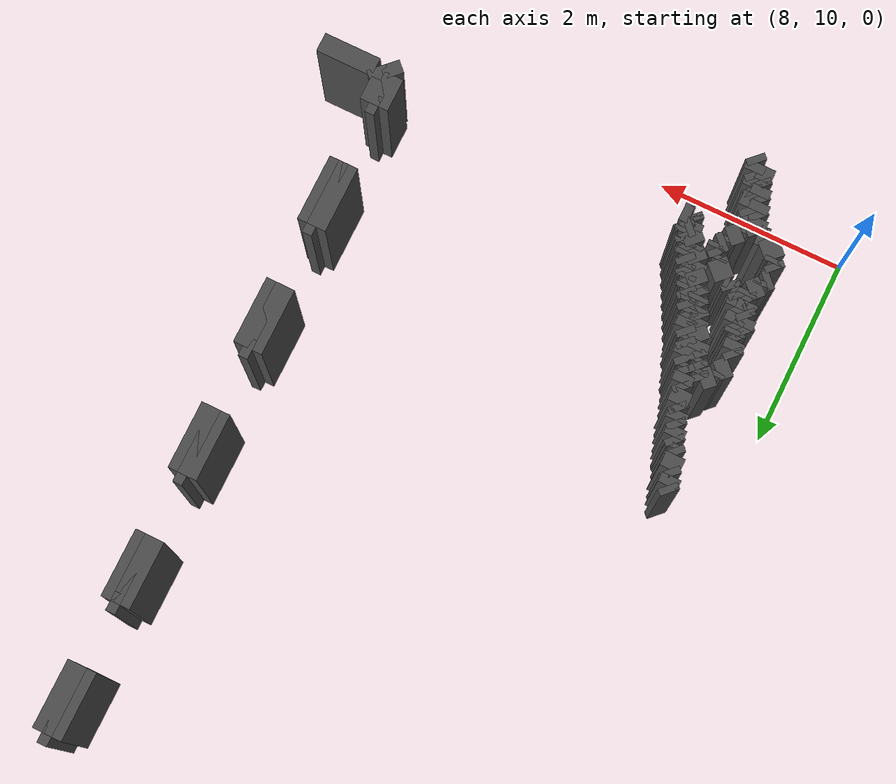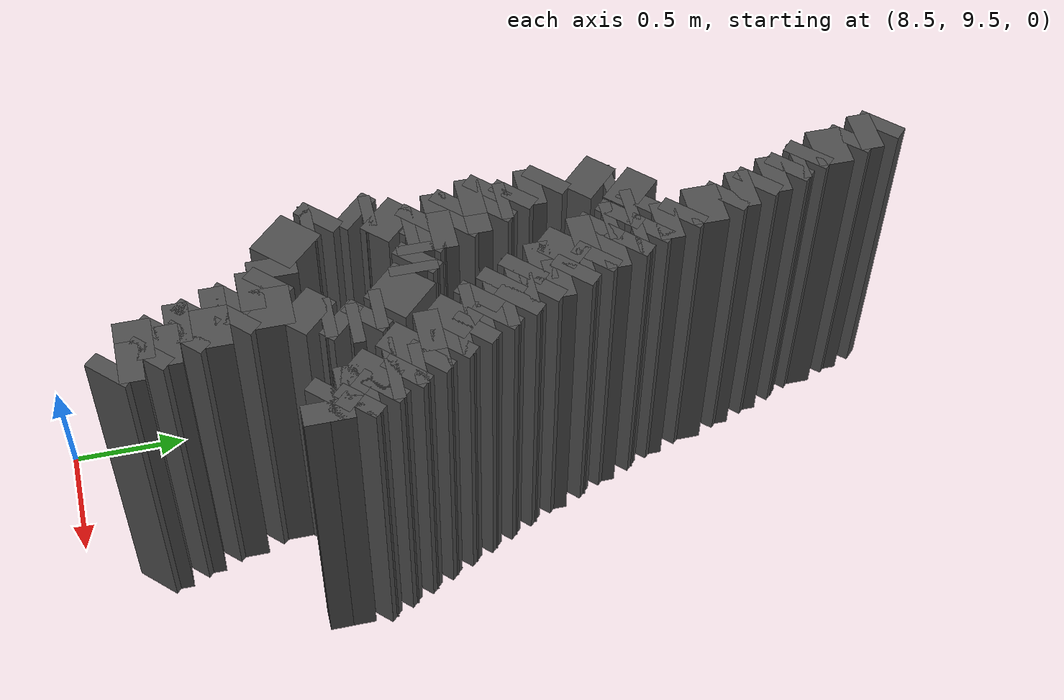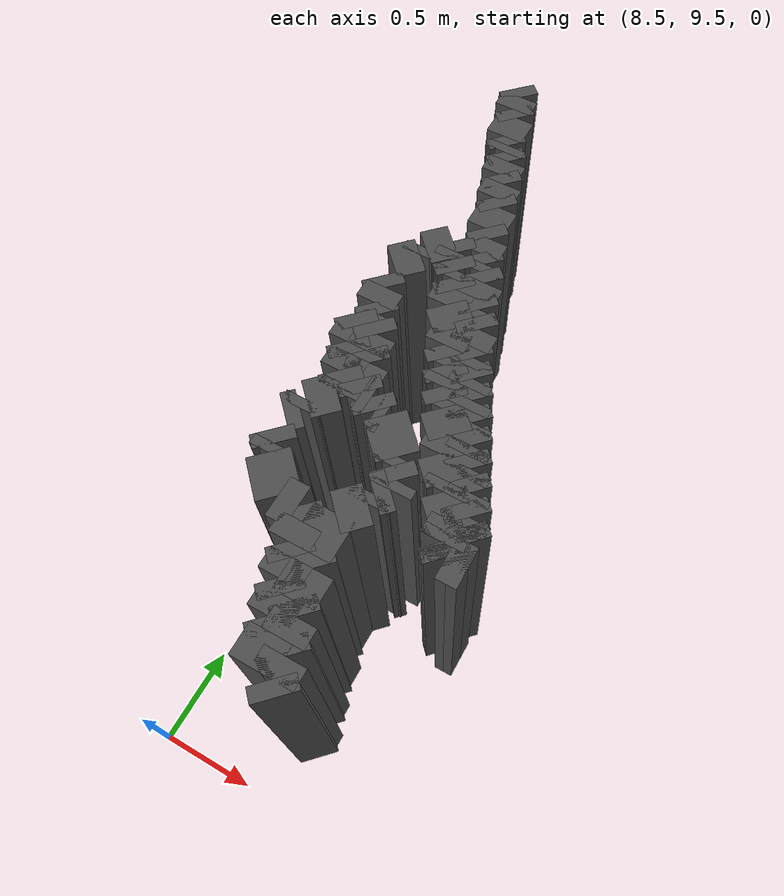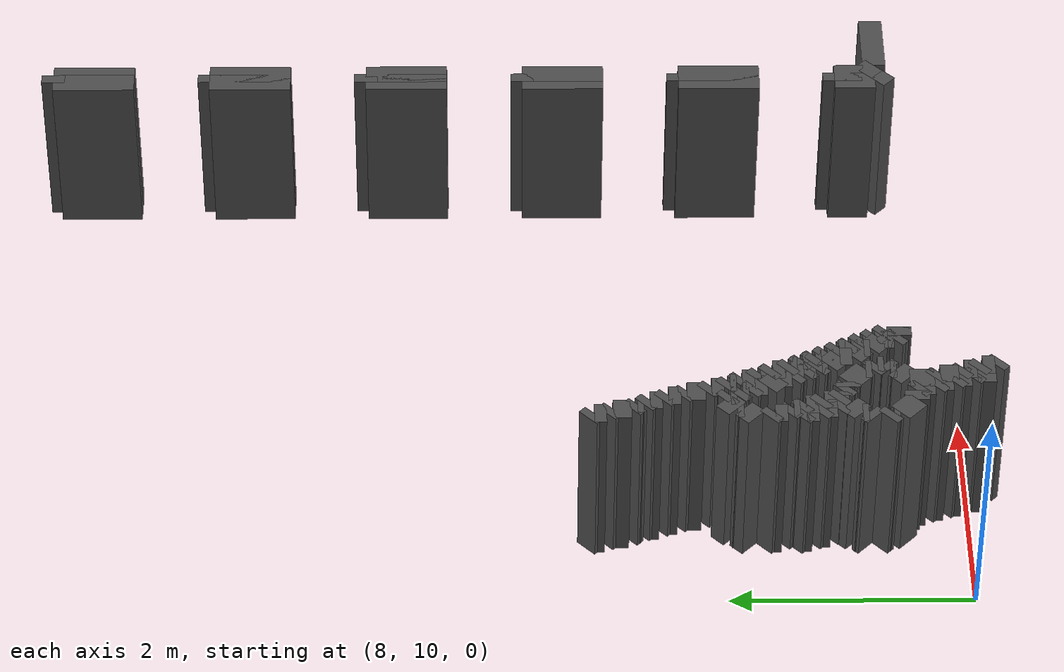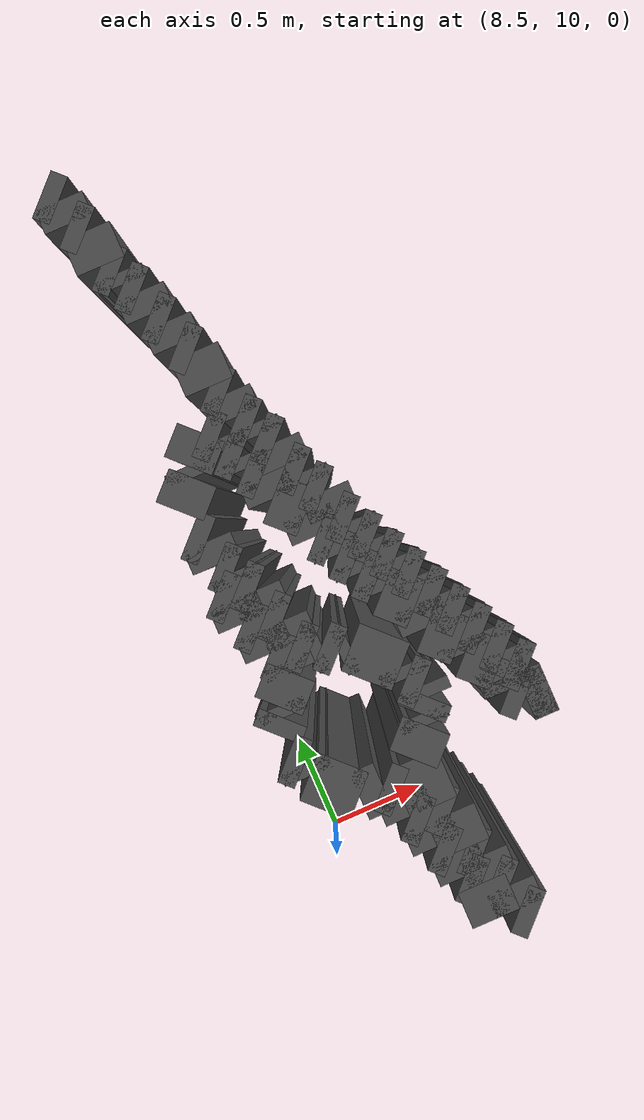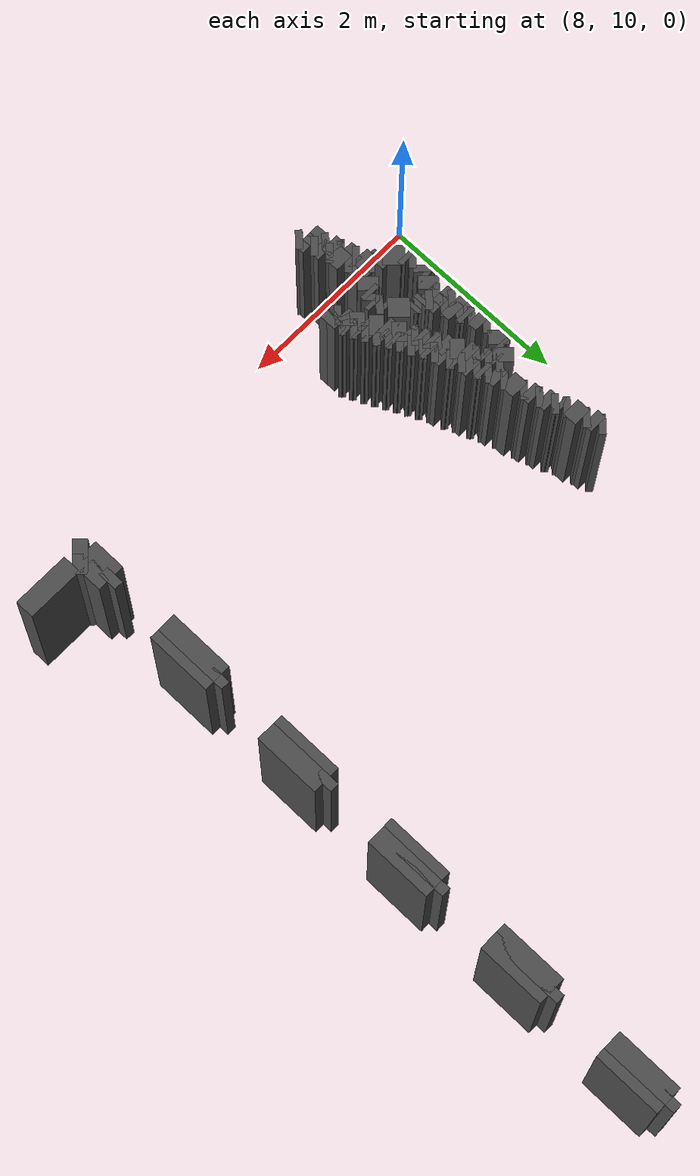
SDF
<sdf version="1.9">
 <model name="generated_walls">
  <static>true</static>
  <link name="wall_121_0">
   <pose>12.750 17.350 0.75 0 0 1.571</pose>
   <collision name="collision"><geometry><box><size>0.700 0.2 1.5</size></box></geometry></collision>
   <visual name="visual">
    <geometry><box><size>0.700 0.2 1.5</size></box></geometry>
    <material><ambient>0.3 0.3 0.3 1</ambient></material>
   </visual>
  </link>
  <link name="wall_121_1">
   <pose>12.800 17.700 0.75 0 0 0.000</pose>
   <collision name="collision"><geometry><box><size>0.100 0.2 1.5</size></box></geometry></collision>
   <visual name="visual">
    <geometry><box><size>0.100 0.2 1.5</size></box></geometry>
    <material><ambient>0.3 0.3 0.3 1</ambient></material>
   </visual>
  </link>
  <link name="wall_121_2">
   <pose>12.850 17.350 0.75 0 0 -1.571</pose>
   <collision name="collision"><geometry><box><size>0.700 0.2 1.5</size></box></geometry></collision>
   <visual name="visual">
    <geometry><box><size>0.700 0.2 1.5</size></box></geometry>
    <material><ambient>0.3 0.3 0.3 1</ambient></material>
   </visual>
  </link>
  <link name="wall_128_0">
   <pose>12.750 16.000 0.75 0 0 1.571</pose>
   <collision name="collision"><geometry><box><size>0.700 0.2 1.5</size></box></geometry></collision>
   <visual name="visual">
    <geometry><box><size>0.700 0.2 1.5</size></box></geometry>
    <material><ambient>0.3 0.3 0.3 1</ambient></material>
   </visual>
  </link>
  <link name="wall_128_1">
   <pose>12.800 16.350 0.75 0 0 0.000</pose>
   <collision name="collision"><geometry><box><size>0.100 0.2 1.5</size></box></geometry></collision>
   <visual name="visual">
    <geometry><box><size>0.100 0.2 1.5</size></box></geometry>
    <material><ambient>0.3 0.3 0.3 1</ambient></material>
   </visual>
  </link>
  <link name="wall_128_2">
   <pose>12.850 16.000 0.75 0 0 -1.571</pose>
   <collision name="collision"><geometry><box><size>0.700 0.2 1.5</size></box></geometry></collision>
   <visual name="visual">
    <geometry><box><size>0.700 0.2 1.5</size></box></geometry>
    <material><ambient>0.3 0.3 0.3 1</ambient></material>
   </visual>
  </link>
  <link name="wall_132_0">
   <pose>12.750 14.650 0.75 0 0 1.571</pose>
   <collision name="collision"><geometry><box><size>0.700 0.2 1.5</size></box></geometry></collision>
   <visual name="visual">
    <geometry><box><size>0.700 0.2 1.5</size></box></geometry>
    <material><ambient>0.3 0.3 0.3 1</ambient></material>
   </visual>
  </link>
  <link name="wall_132_1">
   <pose>12.800 15.000 0.75 0 0 0.000</pose>
   <collision name="collision"><geometry><box><size>0.100 0.2 1.5</size></box></geometry></collision>
   <visual name="visual">
    <geometry><box><size>0.100 0.2 1.5</size></box></geometry>
    <material><ambient>0.3 0.3 0.3 1</ambient></material>
   </visual>
  </link>
  <link name="wall_132_2">
   <pose>12.850 14.650 0.75 0 0 -1.571</pose>
   <collision name="collision"><geometry><box><size>0.700 0.2 1.5</size></box></geometry></collision>
   <visual name="visual">
    <geometry><box><size>0.700 0.2 1.5</size></box></geometry>
    <material><ambient>0.3 0.3 0.3 1</ambient></material>
   </visual>
  </link>
  <link name="wall_136_0">
   <pose>12.750 13.300 0.75 0 0 1.571</pose>
   <collision name="collision"><geometry><box><size>0.700 0.2 1.5</size></box></geometry></collision>
   <visual name="visual">
    <geometry><box><size>0.700 0.2 1.5</size></box></geometry>
    <material><ambient>0.3 0.3 0.3 1</ambient></material>
   </visual>
  </link>
  <link name="wall_136_1">
   <pose>12.800 13.650 0.75 0 0 0.000</pose>
   <collision name="collision"><geometry><box><size>0.100 0.2 1.5</size></box></geometry></collision>
   <visual name="visual">
    <geometry><box><size>0.100 0.2 1.5</size></box></geometry>
    <material><ambient>0.3 0.3 0.3 1</ambient></material>
   </visual>
  </link>
  <link name="wall_136_2">
   <pose>12.850 13.300 0.75 0 0 -1.571</pose>
   <collision name="collision"><geometry><box><size>0.700 0.2 1.5</size></box></geometry></collision>
   <visual name="visual">
    <geometry><box><size>0.700 0.2 1.5</size></box></geometry>
    <material><ambient>0.3 0.3 0.3 1</ambient></material>
   </visual>
  </link>
  <link name="wall_139_0">
   <pose>12.750 11.950 0.75 0 0 1.571</pose>
   <collision name="collision"><geometry><box><size>0.700 0.2 1.5</size></box></geometry></collision>
   <visual name="visual">
    <geometry><box><size>0.700 0.2 1.5</size></box></geometry>
    <material><ambient>0.3 0.3 0.3 1</ambient></material>
   </visual>
  </link>
  <link name="wall_139_1">
   <pose>12.800 12.300 0.75 0 0 0.000</pose>
   <collision name="collision"><geometry><box><size>0.100 0.2 1.5</size></box></geometry></collision>
   <visual name="visual">
    <geometry><box><size>0.100 0.2 1.5</size></box></geometry>
    <material><ambient>0.3 0.3 0.3 1</ambient></material>
   </visual>
  </link>
  <link name="wall_139_2">
   <pose>12.850 11.950 0.75 0 0 -1.571</pose>
   <collision name="collision"><geometry><box><size>0.700 0.2 1.5</size></box></geometry></collision>
   <visual name="visual">
    <geometry><box><size>0.700 0.2 1.5</size></box></geometry>
    <material><ambient>0.3 0.3 0.3 1</ambient></material>
   </visual>
  </link>
  <link name="wall_144_0">
   <pose>12.800 10.550 0.75 0 0 2.356</pose>
   <collision name="collision"><geometry><box><size>0.141 0.2 1.5</size></box></geometry></collision>
   <visual name="visual">
    <geometry><box><size>0.141 0.2 1.5</size></box></geometry>
    <material><ambient>0.3 0.3 0.3 1</ambient></material>
   </visual>
  </link>
  <link name="wall_144_1">
   <pose>12.750 10.775 0.75 0 0 1.571</pose>
   <collision name="collision"><geometry><box><size>0.350 0.2 1.5</size></box></geometry></collision>
   <visual name="visual">
    <geometry><box><size>0.350 0.2 1.5</size></box></geometry>
    <material><ambient>0.3 0.3 0.3 1</ambient></material>
   </visual>
  </link>
  <link name="wall_144_2">
   <pose>12.800 10.950 0.75 0 0 0.000</pose>
   <collision name="collision"><geometry><box><size>0.100 0.2 1.5</size></box></geometry></collision>
   <visual name="visual">
    <geometry><box><size>0.100 0.2 1.5</size></box></geometry>
    <material><ambient>0.3 0.3 0.3 1</ambient></material>
   </visual>
  </link>
  <link name="wall_144_3">
   <pose>12.850 10.825 0.75 0 0 -1.571</pose>
   <collision name="collision"><geometry><box><size>0.250 0.2 1.5</size></box></geometry></collision>
   <visual name="visual">
    <geometry><box><size>0.250 0.2 1.5</size></box></geometry>
    <material><ambient>0.3 0.3 0.3 1</ambient></material>
   </visual>
  </link>
  <link name="wall_144_4">
   <pose>12.900 10.650 0.75 0 0 -0.785</pose>
   <collision name="collision"><geometry><box><size>0.141 0.2 1.5</size></box></geometry></collision>
   <visual name="visual">
    <geometry><box><size>0.141 0.2 1.5</size></box></geometry>
    <material><ambient>0.3 0.3 0.3 1</ambient></material>
   </visual>
  </link>
  <link name="wall_144_5">
   <pose>13.250 10.600 0.75 0 0 0.000</pose>
   <collision name="collision"><geometry><box><size>0.600 0.2 1.5</size></box></geometry></collision>
   <visual name="visual">
    <geometry><box><size>0.600 0.2 1.5</size></box></geometry>
    <material><ambient>0.3 0.3 0.3 1</ambient></material>
   </visual>
  </link>
  <link name="wall_161_128">
   <pose>9.100 9.925 0.75 0 0 1.571</pose>
   <collision name="collision"><geometry><box><size>0.150 0.2 1.5</size></box></geometry></collision>
   <visual name="visual">
    <geometry><box><size>0.150 0.2 1.5</size></box></geometry>
    <material><ambient>0.3 0.3 0.3 1</ambient></material>
   </visual>
  </link>
  <link name="wall_161_129">
   <pose>9.075 10.025 0.75 0 0 2.356</pose>
   <collision name="collision"><geometry><box><size>0.071 0.2 1.5</size></box></geometry></collision>
   <visual name="visual">
    <geometry><box><size>0.071 0.2 1.5</size></box></geometry>
    <material><ambient>0.3 0.3 0.3 1</ambient></material>
   </visual>
  </link>
  <link name="wall_161_130">
   <pose>9.050 10.100 0.75 0 0 1.571</pose>
   <collision name="collision"><geometry><box><size>0.100 0.2 1.5</size></box></geometry></collision>
   <visual name="visual">
    <geometry><box><size>0.100 0.2 1.5</size></box></geometry>
    <material><ambient>0.3 0.3 0.3 1</ambient></material>
   </visual>
  </link>
  <link name="wall_161_131">
   <pose>9.025 10.175 0.75 0 0 2.356</pose>
   <collision name="collision"><geometry><box><size>0.071 0.2 1.5</size></box></geometry></collision>
   <visual name="visual">
    <geometry><box><size>0.071 0.2 1.5</size></box></geometry>
    <material><ambient>0.3 0.3 0.3 1</ambient></material>
   </visual>
  </link>
  <link name="wall_161_132">
   <pose>9.000 10.250 0.75 0 0 1.571</pose>
   <collision name="collision"><geometry><box><size>0.100 0.2 1.5</size></box></geometry></collision>
   <visual name="visual">
    <geometry><box><size>0.100 0.2 1.5</size></box></geometry>
    <material><ambient>0.3 0.3 0.3 1</ambient></material>
   </visual>
  </link>
  <link name="wall_161_133">
   <pose>8.975 10.325 0.75 0 0 2.356</pose>
   <collision name="collision"><geometry><box><size>0.071 0.2 1.5</size></box></geometry></collision>
   <visual name="visual">
    <geometry><box><size>0.071 0.2 1.5</size></box></geometry>
    <material><ambient>0.3 0.3 0.3 1</ambient></material>
   </visual>
  </link>
  <link name="wall_161_134">
   <pose>8.950 10.400 0.75 0 0 1.571</pose>
   <collision name="collision"><geometry><box><size>0.100 0.2 1.5</size></box></geometry></collision>
   <visual name="visual">
    <geometry><box><size>0.100 0.2 1.5</size></box></geometry>
    <material><ambient>0.3 0.3 0.3 1</ambient></material>
   </visual>
  </link>
  <link name="wall_161_135">
   <pose>8.925 10.475 0.75 0 0 2.356</pose>
   <collision name="collision"><geometry><box><size>0.071 0.2 1.5</size></box></geometry></collision>
   <visual name="visual">
    <geometry><box><size>0.071 0.2 1.5</size></box></geometry>
    <material><ambient>0.3 0.3 0.3 1</ambient></material>
   </visual>
  </link>
  <link name="wall_161_136">
   <pose>8.850 10.500 0.75 0 0 3.142</pose>
   <collision name="collision"><geometry><box><size>0.100 0.2 1.5</size></box></geometry></collision>
   <visual name="visual">
    <geometry><box><size>0.100 0.2 1.5</size></box></geometry>
    <material><ambient>0.3 0.3 0.3 1</ambient></material>
   </visual>
  </link>
  <link name="wall_161_137">
   <pose>8.725 10.575 0.75 0 0 2.356</pose>
   <collision name="collision"><geometry><box><size>0.212 0.2 1.5</size></box></geometry></collision>
   <visual name="visual">
    <geometry><box><size>0.212 0.2 1.5</size></box></geometry>
    <material><ambient>0.3 0.3 0.3 1</ambient></material>
   </visual>
  </link>
  <link name="wall_161_138">
   <pose>8.650 10.675 0.75 0 0 1.571</pose>
   <collision name="collision"><geometry><box><size>0.050 0.2 1.5</size></box></geometry></collision>
   <visual name="visual">
    <geometry><box><size>0.050 0.2 1.5</size></box></geometry>
    <material><ambient>0.3 0.3 0.3 1</ambient></material>
   </visual>
  </link>
  <link name="wall_161_139">
   <pose>8.625 10.725 0.75 0 0 2.356</pose>
   <collision name="collision"><geometry><box><size>0.071 0.2 1.5</size></box></geometry></collision>
   <visual name="visual">
    <geometry><box><size>0.071 0.2 1.5</size></box></geometry>
    <material><ambient>0.3 0.3 0.3 1</ambient></material>
   </visual>
  </link>
  <link name="wall_161_141">
   <pose>8.625 10.875 0.75 0 0 0.785</pose>
   <collision name="collision"><geometry><box><size>0.071 0.2 1.5</size></box></geometry></collision>
   <visual name="visual">
    <geometry><box><size>0.071 0.2 1.5</size></box></geometry>
    <material><ambient>0.3 0.3 0.3 1</ambient></material>
   </visual>
  </link>
  <link name="wall_161_142">
   <pose>8.650 10.925 0.75 0 0 1.571</pose>
   <collision name="collision"><geometry><box><size>0.050 0.2 1.5</size></box></geometry></collision>
   <visual name="visual">
    <geometry><box><size>0.050 0.2 1.5</size></box></geometry>
    <material><ambient>0.3 0.3 0.3 1</ambient></material>
   </visual>
  </link>
  <link name="wall_161_143">
   <pose>8.700 11.000 0.75 0 0 0.785</pose>
   <collision name="collision"><geometry><box><size>0.141 0.2 1.5</size></box></geometry></collision>
   <visual name="visual">
    <geometry><box><size>0.141 0.2 1.5</size></box></geometry>
    <material><ambient>0.3 0.3 0.3 1</ambient></material>
   </visual>
  </link>
  <link name="wall_161_144">
   <pose>8.750 11.075 0.75 0 0 1.571</pose>
   <collision name="collision"><geometry><box><size>0.050 0.2 1.5</size></box></geometry></collision>
   <visual name="visual">
    <geometry><box><size>0.050 0.2 1.5</size></box></geometry>
    <material><ambient>0.3 0.3 0.3 1</ambient></material>
   </visual>
  </link>
  <link name="wall_161_145">
   <pose>8.725 11.125 0.75 0 0 2.356</pose>
   <collision name="collision"><geometry><box><size>0.071 0.2 1.5</size></box></geometry></collision>
   <visual name="visual">
    <geometry><box><size>0.071 0.2 1.5</size></box></geometry>
    <material><ambient>0.3 0.3 0.3 1</ambient></material>
   </visual>
  </link>
  <link name="wall_161_146">
   <pose>8.700 11.200 0.75 0 0 1.571</pose>
   <collision name="collision"><geometry><box><size>0.100 0.2 1.5</size></box></geometry></collision>
   <visual name="visual">
    <geometry><box><size>0.100 0.2 1.5</size></box></geometry>
    <material><ambient>0.3 0.3 0.3 1</ambient></material>
   </visual>
  </link>
  <link name="wall_161_147">
   <pose>8.675 11.275 0.75 0 0 2.356</pose>
   <collision name="collision"><geometry><box><size>0.071 0.2 1.5</size></box></geometry></collision>
   <visual name="visual">
    <geometry><box><size>0.071 0.2 1.5</size></box></geometry>
    <material><ambient>0.3 0.3 0.3 1</ambient></material>
   </visual>
  </link>
  <link name="wall_161_148">
   <pose>8.650 11.350 0.75 0 0 1.571</pose>
   <collision name="collision"><geometry><box><size>0.100 0.2 1.5</size></box></geometry></collision>
   <visual name="visual">
    <geometry><box><size>0.100 0.2 1.5</size></box></geometry>
    <material><ambient>0.3 0.3 0.3 1</ambient></material>
   </visual>
  </link>
  <link name="wall_161_149">
   <pose>8.625 11.425 0.75 0 0 2.356</pose>
   <collision name="collision"><geometry><box><size>0.071 0.2 1.5</size></box></geometry></collision>
   <visual name="visual">
    <geometry><box><size>0.071 0.2 1.5</size></box></geometry>
    <material><ambient>0.3 0.3 0.3 1</ambient></material>
   </visual>
  </link>
  <link name="wall_161_950">
   <pose>8.625 13.125 0.75 0 0 -0.785</pose>
   <collision name="collision"><geometry><box><size>0.071 0.2 1.5</size></box></geometry></collision>
   <visual name="visual">
    <geometry><box><size>0.071 0.2 1.5</size></box></geometry>
    <material><ambient>0.3 0.3 0.3 1</ambient></material>
   </visual>
  </link>
  <link name="wall_161_951">
   <pose>8.650 13.050 0.75 0 0 -1.571</pose>
   <collision name="collision"><geometry><box><size>0.100 0.2 1.5</size></box></geometry></collision>
   <visual name="visual">
    <geometry><box><size>0.100 0.2 1.5</size></box></geometry>
    <material><ambient>0.3 0.3 0.3 1</ambient></material>
   </visual>
  </link>
  <link name="wall_161_952">
   <pose>8.675 12.975 0.75 0 0 -0.785</pose>
   <collision name="collision"><geometry><box><size>0.071 0.2 1.5</size></box></geometry></collision>
   <visual name="visual">
    <geometry><box><size>0.071 0.2 1.5</size></box></geometry>
    <material><ambient>0.3 0.3 0.3 1</ambient></material>
   </visual>
  </link>
  <link name="wall_161_953">
   <pose>8.700 12.875 0.75 0 0 -1.571</pose>
   <collision name="collision"><geometry><box><size>0.150 0.2 1.5</size></box></geometry></collision>
   <visual name="visual">
    <geometry><box><size>0.150 0.2 1.5</size></box></geometry>
    <material><ambient>0.3 0.3 0.3 1</ambient></material>
   </visual>
  </link>
  <link name="wall_161_954">
   <pose>8.725 12.775 0.75 0 0 -0.785</pose>
   <collision name="collision"><geometry><box><size>0.071 0.2 1.5</size></box></geometry></collision>
   <visual name="visual">
    <geometry><box><size>0.071 0.2 1.5</size></box></geometry>
    <material><ambient>0.3 0.3 0.3 1</ambient></material>
   </visual>
  </link>
  <link name="wall_161_955">
   <pose>8.750 12.725 0.75 0 0 -1.571</pose>
   <collision name="collision"><geometry><box><size>0.050 0.2 1.5</size></box></geometry></collision>
   <visual name="visual">
    <geometry><box><size>0.050 0.2 1.5</size></box></geometry>
    <material><ambient>0.3 0.3 0.3 1</ambient></material>
   </visual>
  </link>
  <link name="wall_161_956">
   <pose>8.775 12.675 0.75 0 0 -0.785</pose>
   <collision name="collision"><geometry><box><size>0.071 0.2 1.5</size></box></geometry></collision>
   <visual name="visual">
    <geometry><box><size>0.071 0.2 1.5</size></box></geometry>
    <material><ambient>0.3 0.3 0.3 1</ambient></material>
   </visual>
  </link>
  <link name="wall_161_957">
   <pose>8.800 12.600 0.75 0 0 -1.571</pose>
   <collision name="collision"><geometry><box><size>0.100 0.2 1.5</size></box></geometry></collision>
   <visual name="visual">
    <geometry><box><size>0.100 0.2 1.5</size></box></geometry>
    <material><ambient>0.3 0.3 0.3 1</ambient></material>
   </visual>
  </link>
  <link name="wall_161_958">
   <pose>8.825 12.525 0.75 0 0 -0.785</pose>
   <collision name="collision"><geometry><box><size>0.071 0.2 1.5</size></box></geometry></collision>
   <visual name="visual">
    <geometry><box><size>0.071 0.2 1.5</size></box></geometry>
    <material><ambient>0.3 0.3 0.3 1</ambient></material>
   </visual>
  </link>
  <link name="wall_161_959">
   <pose>8.850 12.450 0.75 0 0 -1.571</pose>
   <collision name="collision"><geometry><box><size>0.100 0.2 1.5</size></box></geometry></collision>
   <visual name="visual">
    <geometry><box><size>0.100 0.2 1.5</size></box></geometry>
    <material><ambient>0.3 0.3 0.3 1</ambient></material>
   </visual>
  </link>
  <link name="wall_161_960">
   <pose>8.875 12.375 0.75 0 0 -0.785</pose>
   <collision name="collision"><geometry><box><size>0.071 0.2 1.5</size></box></geometry></collision>
   <visual name="visual">
    <geometry><box><size>0.071 0.2 1.5</size></box></geometry>
    <material><ambient>0.3 0.3 0.3 1</ambient></material>
   </visual>
  </link>
  <link name="wall_161_961">
   <pose>8.900 12.275 0.75 0 0 -1.571</pose>
   <collision name="collision"><geometry><box><size>0.150 0.2 1.5</size></box></geometry></collision>
   <visual name="visual">
    <geometry><box><size>0.150 0.2 1.5</size></box></geometry>
    <material><ambient>0.3 0.3 0.3 1</ambient></material>
   </visual>
  </link>
  <link name="wall_161_962">
   <pose>8.925 12.175 0.75 0 0 -0.785</pose>
   <collision name="collision"><geometry><box><size>0.071 0.2 1.5</size></box></geometry></collision>
   <visual name="visual">
    <geometry><box><size>0.071 0.2 1.5</size></box></geometry>
    <material><ambient>0.3 0.3 0.3 1</ambient></material>
   </visual>
  </link>
  <link name="wall_161_963">
   <pose>8.950 12.100 0.75 0 0 -1.571</pose>
   <collision name="collision"><geometry><box><size>0.100 0.2 1.5</size></box></geometry></collision>
   <visual name="visual">
    <geometry><box><size>0.100 0.2 1.5</size></box></geometry>
    <material><ambient>0.3 0.3 0.3 1</ambient></material>
   </visual>
  </link>
  <link name="wall_161_964">
   <pose>8.975 12.025 0.75 0 0 -0.785</pose>
   <collision name="collision"><geometry><box><size>0.071 0.2 1.5</size></box></geometry></collision>
   <visual name="visual">
    <geometry><box><size>0.071 0.2 1.5</size></box></geometry>
    <material><ambient>0.3 0.3 0.3 1</ambient></material>
   </visual>
  </link>
  <link name="wall_161_965">
   <pose>9.000 11.975 0.75 0 0 -1.571</pose>
   <collision name="collision"><geometry><box><size>0.050 0.2 1.5</size></box></geometry></collision>
   <visual name="visual">
    <geometry><box><size>0.050 0.2 1.5</size></box></geometry>
    <material><ambient>0.3 0.3 0.3 1</ambient></material>
   </visual>
  </link>
  <link name="wall_161_966">
   <pose>9.025 11.925 0.75 0 0 -0.785</pose>
   <collision name="collision"><geometry><box><size>0.071 0.2 1.5</size></box></geometry></collision>
   <visual name="visual">
    <geometry><box><size>0.071 0.2 1.5</size></box></geometry>
    <material><ambient>0.3 0.3 0.3 1</ambient></material>
   </visual>
  </link>
  <link name="wall_161_967">
   <pose>9.050 11.850 0.75 0 0 -1.571</pose>
   <collision name="collision"><geometry><box><size>0.100 0.2 1.5</size></box></geometry></collision>
   <visual name="visual">
    <geometry><box><size>0.100 0.2 1.5</size></box></geometry>
    <material><ambient>0.3 0.3 0.3 1</ambient></material>
   </visual>
  </link>
  <link name="wall_161_968">
   <pose>9.075 11.775 0.75 0 0 -0.785</pose>
   <collision name="collision"><geometry><box><size>0.071 0.2 1.5</size></box></geometry></collision>
   <visual name="visual">
    <geometry><box><size>0.071 0.2 1.5</size></box></geometry>
    <material><ambient>0.3 0.3 0.3 1</ambient></material>
   </visual>
  </link>
  <link name="wall_161_969">
   <pose>9.100 11.725 0.75 0 0 -1.571</pose>
   <collision name="collision"><geometry><box><size>0.050 0.2 1.5</size></box></geometry></collision>
   <visual name="visual">
    <geometry><box><size>0.050 0.2 1.5</size></box></geometry>
    <material><ambient>0.3 0.3 0.3 1</ambient></material>
   </visual>
  </link>
  <link name="wall_161_970">
   <pose>9.125 11.675 0.75 0 0 -0.785</pose>
   <collision name="collision"><geometry><box><size>0.071 0.2 1.5</size></box></geometry></collision>
   <visual name="visual">
    <geometry><box><size>0.071 0.2 1.5</size></box></geometry>
    <material><ambient>0.3 0.3 0.3 1</ambient></material>
   </visual>
  </link>
  <link name="wall_161_971">
   <pose>9.150 11.600 0.75 0 0 -1.571</pose>
   <collision name="collision"><geometry><box><size>0.100 0.2 1.5</size></box></geometry></collision>
   <visual name="visual">
    <geometry><box><size>0.100 0.2 1.5</size></box></geometry>
    <material><ambient>0.3 0.3 0.3 1</ambient></material>
   </visual>
  </link>
  <link name="wall_161_972">
   <pose>9.175 11.525 0.75 0 0 -0.785</pose>
   <collision name="collision"><geometry><box><size>0.071 0.2 1.5</size></box></geometry></collision>
   <visual name="visual">
    <geometry><box><size>0.071 0.2 1.5</size></box></geometry>
    <material><ambient>0.3 0.3 0.3 1</ambient></material>
   </visual>
  </link>
  <link name="wall_161_973">
   <pose>9.200 11.475 0.75 0 0 -1.571</pose>
   <collision name="collision"><geometry><box><size>0.050 0.2 1.5</size></box></geometry></collision>
   <visual name="visual">
    <geometry><box><size>0.050 0.2 1.5</size></box></geometry>
    <material><ambient>0.3 0.3 0.3 1</ambient></material>
   </visual>
  </link>
  <link name="wall_161_974">
   <pose>9.225 11.425 0.75 0 0 -0.785</pose>
   <collision name="collision"><geometry><box><size>0.071 0.2 1.5</size></box></geometry></collision>
   <visual name="visual">
    <geometry><box><size>0.071 0.2 1.5</size></box></geometry>
    <material><ambient>0.3 0.3 0.3 1</ambient></material>
   </visual>
  </link>
  <link name="wall_161_975">
   <pose>9.250 11.375 0.75 0 0 -1.571</pose>
   <collision name="collision"><geometry><box><size>0.050 0.2 1.5</size></box></geometry></collision>
   <visual name="visual">
    <geometry><box><size>0.050 0.2 1.5</size></box></geometry>
    <material><ambient>0.3 0.3 0.3 1</ambient></material>
   </visual>
  </link>
  <link name="wall_161_976">
   <pose>9.275 11.325 0.75 0 0 -0.785</pose>
   <collision name="collision"><geometry><box><size>0.071 0.2 1.5</size></box></geometry></collision>
   <visual name="visual">
    <geometry><box><size>0.071 0.2 1.5</size></box></geometry>
    <material><ambient>0.3 0.3 0.3 1</ambient></material>
   </visual>
  </link>
  <link name="wall_161_977">
   <pose>9.300 11.275 0.75 0 0 -1.571</pose>
   <collision name="collision"><geometry><box><size>0.050 0.2 1.5</size></box></geometry></collision>
   <visual name="visual">
    <geometry><box><size>0.050 0.2 1.5</size></box></geometry>
    <material><ambient>0.3 0.3 0.3 1</ambient></material>
   </visual>
  </link>
  <link name="wall_161_978">
   <pose>9.325 11.225 0.75 0 0 -0.785</pose>
   <collision name="collision"><geometry><box><size>0.071 0.2 1.5</size></box></geometry></collision>
   <visual name="visual">
    <geometry><box><size>0.071 0.2 1.5</size></box></geometry>
    <material><ambient>0.3 0.3 0.3 1</ambient></material>
   </visual>
  </link>
  <link name="wall_161_979">
   <pose>9.350 11.175 0.75 0 0 -1.571</pose>
   <collision name="collision"><geometry><box><size>0.050 0.2 1.5</size></box></geometry></collision>
   <visual name="visual">
    <geometry><box><size>0.050 0.2 1.5</size></box></geometry>
    <material><ambient>0.3 0.3 0.3 1</ambient></material>
   </visual>
  </link>
  <link name="wall_161_980">
   <pose>9.375 11.125 0.75 0 0 -0.785</pose>
   <collision name="collision"><geometry><box><size>0.071 0.2 1.5</size></box></geometry></collision>
   <visual name="visual">
    <geometry><box><size>0.071 0.2 1.5</size></box></geometry>
    <material><ambient>0.3 0.3 0.3 1</ambient></material>
   </visual>
  </link>
  <link name="wall_161_981">
   <pose>9.400 11.075 0.75 0 0 -1.571</pose>
   <collision name="collision"><geometry><box><size>0.050 0.2 1.5</size></box></geometry></collision>
   <visual name="visual">
    <geometry><box><size>0.050 0.2 1.5</size></box></geometry>
    <material><ambient>0.3 0.3 0.3 1</ambient></material>
   </visual>
  </link>
  <link name="wall_161_982">
   <pose>9.425 11.025 0.75 0 0 -0.785</pose>
   <collision name="collision"><geometry><box><size>0.071 0.2 1.5</size></box></geometry></collision>
   <visual name="visual">
    <geometry><box><size>0.071 0.2 1.5</size></box></geometry>
    <material><ambient>0.3 0.3 0.3 1</ambient></material>
   </visual>
  </link>
  <link name="wall_161_983">
   <pose>9.450 10.975 0.75 0 0 -1.571</pose>
   <collision name="collision"><geometry><box><size>0.050 0.2 1.5</size></box></geometry></collision>
   <visual name="visual">
    <geometry><box><size>0.050 0.2 1.5</size></box></geometry>
    <material><ambient>0.3 0.3 0.3 1</ambient></material>
   </visual>
  </link>
  <link name="wall_161_984">
   <pose>9.475 10.925 0.75 0 0 -0.785</pose>
   <collision name="collision"><geometry><box><size>0.071 0.2 1.5</size></box></geometry></collision>
   <visual name="visual">
    <geometry><box><size>0.071 0.2 1.5</size></box></geometry>
    <material><ambient>0.3 0.3 0.3 1</ambient></material>
   </visual>
  </link>
  <link name="wall_161_985">
   <pose>9.500 10.875 0.75 0 0 -1.571</pose>
   <collision name="collision"><geometry><box><size>0.050 0.2 1.5</size></box></geometry></collision>
   <visual name="visual">
    <geometry><box><size>0.050 0.2 1.5</size></box></geometry>
    <material><ambient>0.3 0.3 0.3 1</ambient></material>
   </visual>
  </link>
  <link name="wall_161_986">
   <pose>9.525 10.825 0.75 0 0 -0.785</pose>
   <collision name="collision"><geometry><box><size>0.071 0.2 1.5</size></box></geometry></collision>
   <visual name="visual">
    <geometry><box><size>0.071 0.2 1.5</size></box></geometry>
    <material><ambient>0.3 0.3 0.3 1</ambient></material>
   </visual>
  </link>
  <link name="wall_161_987">
   <pose>9.550 10.775 0.75 0 0 -1.571</pose>
   <collision name="collision"><geometry><box><size>0.050 0.2 1.5</size></box></geometry></collision>
   <visual name="visual">
    <geometry><box><size>0.050 0.2 1.5</size></box></geometry>
    <material><ambient>0.3 0.3 0.3 1</ambient></material>
   </visual>
  </link>
  <link name="wall_161_988">
   <pose>9.575 10.725 0.75 0 0 -0.785</pose>
   <collision name="collision"><geometry><box><size>0.071 0.2 1.5</size></box></geometry></collision>
   <visual name="visual">
    <geometry><box><size>0.071 0.2 1.5</size></box></geometry>
    <material><ambient>0.3 0.3 0.3 1</ambient></material>
   </visual>
  </link>
  <link name="wall_161_989">
   <pose>9.575 10.725 0.75 0 0 2.356</pose>
   <collision name="collision"><geometry><box><size>0.071 0.2 1.5</size></box></geometry></collision>
   <visual name="visual">
    <geometry><box><size>0.071 0.2 1.5</size></box></geometry>
    <material><ambient>0.3 0.3 0.3 1</ambient></material>
   </visual>
  </link>
  <link name="wall_161_990">
   <pose>9.525 10.725 0.75 0 0 -2.356</pose>
   <collision name="collision"><geometry><box><size>0.071 0.2 1.5</size></box></geometry></collision>
   <visual name="visual">
    <geometry><box><size>0.071 0.2 1.5</size></box></geometry>
    <material><ambient>0.3 0.3 0.3 1</ambient></material>
   </visual>
  </link>
  <link name="wall_161_991">
   <pose>9.500 10.675 0.75 0 0 -1.571</pose>
   <collision name="collision"><geometry><box><size>0.050 0.2 1.5</size></box></geometry></collision>
   <visual name="visual">
    <geometry><box><size>0.050 0.2 1.5</size></box></geometry>
    <material><ambient>0.3 0.3 0.3 1</ambient></material>
   </visual>
  </link>
  <link name="wall_161_992">
   <pose>9.525 10.625 0.75 0 0 -0.785</pose>
   <collision name="collision"><geometry><box><size>0.071 0.2 1.5</size></box></geometry></collision>
   <visual name="visual">
    <geometry><box><size>0.071 0.2 1.5</size></box></geometry>
    <material><ambient>0.3 0.3 0.3 1</ambient></material>
   </visual>
  </link>
  <link name="wall_161_993">
   <pose>9.600 10.600 0.75 0 0 0.000</pose>
   <collision name="collision"><geometry><box><size>0.100 0.2 1.5</size></box></geometry></collision>
   <visual name="visual">
    <geometry><box><size>0.100 0.2 1.5</size></box></geometry>
    <material><ambient>0.3 0.3 0.3 1</ambient></material>
   </visual>
  </link>
  <link name="wall_161_994">
   <pose>9.600 10.600 0.75 0 0 3.142</pose>
   <collision name="collision"><geometry><box><size>0.100 0.2 1.5</size></box></geometry></collision>
   <visual name="visual">
    <geometry><box><size>0.100 0.2 1.5</size></box></geometry>
    <material><ambient>0.3 0.3 0.3 1</ambient></material>
   </visual>
  </link>
  <link name="wall_161_995">
   <pose>9.525 10.625 0.75 0 0 2.356</pose>
   <collision name="collision"><geometry><box><size>0.071 0.2 1.5</size></box></geometry></collision>
   <visual name="visual">
    <geometry><box><size>0.071 0.2 1.5</size></box></geometry>
    <material><ambient>0.3 0.3 0.3 1</ambient></material>
   </visual>
  </link>
  <link name="wall_161_996">
   <pose>9.500 10.700 0.75 0 0 1.571</pose>
   <collision name="collision"><geometry><box><size>0.100 0.2 1.5</size></box></geometry></collision>
   <visual name="visual">
    <geometry><box><size>0.100 0.2 1.5</size></box></geometry>
    <material><ambient>0.3 0.3 0.3 1</ambient></material>
   </visual>
  </link>
  <link name="wall_161_997">
   <pose>9.450 10.800 0.75 0 0 2.356</pose>
   <collision name="collision"><geometry><box><size>0.141 0.2 1.5</size></box></geometry></collision>
   <visual name="visual">
    <geometry><box><size>0.141 0.2 1.5</size></box></geometry>
    <material><ambient>0.3 0.3 0.3 1</ambient></material>
   </visual>
  </link>
  <link name="wall_161_998">
   <pose>9.400 10.875 0.75 0 0 1.571</pose>
   <collision name="collision"><geometry><box><size>0.050 0.2 1.5</size></box></geometry></collision>
   <visual name="visual">
    <geometry><box><size>0.050 0.2 1.5</size></box></geometry>
    <material><ambient>0.3 0.3 0.3 1</ambient></material>
   </visual>
  </link>
  <link name="wall_161_999">
   <pose>9.350 10.950 0.75 0 0 2.356</pose>
   <collision name="collision"><geometry><box><size>0.141 0.2 1.5</size></box></geometry></collision>
   <visual name="visual">
    <geometry><box><size>0.141 0.2 1.5</size></box></geometry>
    <material><ambient>0.3 0.3 0.3 1</ambient></material>
   </visual>
  </link>
  <link name="wall_161_1000">
   <pose>9.300 11.050 0.75 0 0 1.571</pose>
   <collision name="collision"><geometry><box><size>0.100 0.2 1.5</size></box></geometry></collision>
   <visual name="visual">
    <geometry><box><size>0.100 0.2 1.5</size></box></geometry>
    <material><ambient>0.3 0.3 0.3 1</ambient></material>
   </visual>
  </link>
  <link name="wall_161_1001">
   <pose>9.250 11.150 0.75 0 0 2.356</pose>
   <collision name="collision"><geometry><box><size>0.141 0.2 1.5</size></box></geometry></collision>
   <visual name="visual">
    <geometry><box><size>0.141 0.2 1.5</size></box></geometry>
    <material><ambient>0.3 0.3 0.3 1</ambient></material>
   </visual>
  </link>
  <link name="wall_161_1002">
   <pose>9.200 11.225 0.75 0 0 1.571</pose>
   <collision name="collision"><geometry><box><size>0.050 0.2 1.5</size></box></geometry></collision>
   <visual name="visual">
    <geometry><box><size>0.050 0.2 1.5</size></box></geometry>
    <material><ambient>0.3 0.3 0.3 1</ambient></material>
   </visual>
  </link>
  <link name="wall_161_1003">
   <pose>9.175 11.275 0.75 0 0 2.356</pose>
   <collision name="collision"><geometry><box><size>0.071 0.2 1.5</size></box></geometry></collision>
   <visual name="visual">
    <geometry><box><size>0.071 0.2 1.5</size></box></geometry>
    <material><ambient>0.3 0.3 0.3 1</ambient></material>
   </visual>
  </link>
  <link name="wall_161_1004">
   <pose>9.150 11.325 0.75 0 0 1.571</pose>
   <collision name="collision"><geometry><box><size>0.050 0.2 1.5</size></box></geometry></collision>
   <visual name="visual">
    <geometry><box><size>0.050 0.2 1.5</size></box></geometry>
    <material><ambient>0.3 0.3 0.3 1</ambient></material>
   </visual>
  </link>
  <link name="wall_161_1005">
   <pose>9.125 11.375 0.75 0 0 2.356</pose>
   <collision name="collision"><geometry><box><size>0.071 0.2 1.5</size></box></geometry></collision>
   <visual name="visual">
    <geometry><box><size>0.071 0.2 1.5</size></box></geometry>
    <material><ambient>0.3 0.3 0.3 1</ambient></material>
   </visual>
  </link>
  <link name="wall_161_1006">
   <pose>9.100 11.425 0.75 0 0 1.571</pose>
   <collision name="collision"><geometry><box><size>0.050 0.2 1.5</size></box></geometry></collision>
   <visual name="visual">
    <geometry><box><size>0.050 0.2 1.5</size></box></geometry>
    <material><ambient>0.3 0.3 0.3 1</ambient></material>
   </visual>
  </link>
  <link name="wall_161_1007">
   <pose>9.075 11.475 0.75 0 0 2.356</pose>
   <collision name="collision"><geometry><box><size>0.071 0.2 1.5</size></box></geometry></collision>
   <visual name="visual">
    <geometry><box><size>0.071 0.2 1.5</size></box></geometry>
    <material><ambient>0.3 0.3 0.3 1</ambient></material>
   </visual>
  </link>
  <link name="wall_161_1008">
   <pose>9.050 11.550 0.75 0 0 1.571</pose>
   <collision name="collision"><geometry><box><size>0.100 0.2 1.5</size></box></geometry></collision>
   <visual name="visual">
    <geometry><box><size>0.100 0.2 1.5</size></box></geometry>
    <material><ambient>0.3 0.3 0.3 1</ambient></material>
   </visual>
  </link>
  <link name="wall_161_1009">
   <pose>9.000 11.650 0.75 0 0 2.356</pose>
   <collision name="collision"><geometry><box><size>0.141 0.2 1.5</size></box></geometry></collision>
   <visual name="visual">
    <geometry><box><size>0.141 0.2 1.5</size></box></geometry>
    <material><ambient>0.3 0.3 0.3 1</ambient></material>
   </visual>
  </link>
  <link name="wall_161_1010">
   <pose>8.950 11.750 0.75 0 0 1.571</pose>
   <collision name="collision"><geometry><box><size>0.100 0.2 1.5</size></box></geometry></collision>
   <visual name="visual">
    <geometry><box><size>0.100 0.2 1.5</size></box></geometry>
    <material><ambient>0.3 0.3 0.3 1</ambient></material>
   </visual>
  </link>
  <link name="wall_161_1011">
   <pose>8.925 11.825 0.75 0 0 2.356</pose>
   <collision name="collision"><geometry><box><size>0.071 0.2 1.5</size></box></geometry></collision>
   <visual name="visual">
    <geometry><box><size>0.071 0.2 1.5</size></box></geometry>
    <material><ambient>0.3 0.3 0.3 1</ambient></material>
   </visual>
  </link>
  <link name="wall_161_1012">
   <pose>8.900 11.875 0.75 0 0 1.571</pose>
   <collision name="collision"><geometry><box><size>0.050 0.2 1.5</size></box></geometry></collision>
   <visual name="visual">
    <geometry><box><size>0.050 0.2 1.5</size></box></geometry>
    <material><ambient>0.3 0.3 0.3 1</ambient></material>
   </visual>
  </link>
  <link name="wall_161_1013">
   <pose>8.875 11.925 0.75 0 0 2.356</pose>
   <collision name="collision"><geometry><box><size>0.071 0.2 1.5</size></box></geometry></collision>
   <visual name="visual">
    <geometry><box><size>0.071 0.2 1.5</size></box></geometry>
    <material><ambient>0.3 0.3 0.3 1</ambient></material>
   </visual>
  </link>
  <link name="wall_161_1014">
   <pose>8.850 11.975 0.75 0 0 1.571</pose>
   <collision name="collision"><geometry><box><size>0.050 0.2 1.5</size></box></geometry></collision>
   <visual name="visual">
    <geometry><box><size>0.050 0.2 1.5</size></box></geometry>
    <material><ambient>0.3 0.3 0.3 1</ambient></material>
   </visual>
  </link>
  <link name="wall_161_1015">
   <pose>8.825 12.025 0.75 0 0 2.356</pose>
   <collision name="collision"><geometry><box><size>0.071 0.2 1.5</size></box></geometry></collision>
   <visual name="visual">
    <geometry><box><size>0.071 0.2 1.5</size></box></geometry>
    <material><ambient>0.3 0.3 0.3 1</ambient></material>
   </visual>
  </link>
  <link name="wall_161_1016">
   <pose>8.750 12.000 0.75 0 0 -2.356</pose>
   <collision name="collision"><geometry><box><size>0.141 0.2 1.5</size></box></geometry></collision>
   <visual name="visual">
    <geometry><box><size>0.141 0.2 1.5</size></box></geometry>
    <material><ambient>0.3 0.3 0.3 1</ambient></material>
   </visual>
  </link>
  <link name="wall_161_1017">
   <pose>8.700 11.925 0.75 0 0 -1.571</pose>
   <collision name="collision"><geometry><box><size>0.050 0.2 1.5</size></box></geometry></collision>
   <visual name="visual">
    <geometry><box><size>0.050 0.2 1.5</size></box></geometry>
    <material><ambient>0.3 0.3 0.3 1</ambient></material>
   </visual>
  </link>
  <link name="wall_161_1018">
   <pose>8.650 11.850 0.75 0 0 -2.356</pose>
   <collision name="collision"><geometry><box><size>0.141 0.2 1.5</size></box></geometry></collision>
   <visual name="visual">
    <geometry><box><size>0.141 0.2 1.5</size></box></geometry>
    <material><ambient>0.3 0.3 0.3 1</ambient></material>
   </visual>
  </link>
  <link name="wall_161_1020">
   <pose>8.625 11.675 0.75 0 0 -0.785</pose>
   <collision name="collision"><geometry><box><size>0.071 0.2 1.5</size></box></geometry></collision>
   <visual name="visual">
    <geometry><box><size>0.071 0.2 1.5</size></box></geometry>
    <material><ambient>0.3 0.3 0.3 1</ambient></material>
   </visual>
  </link>
  <link name="wall_161_1021">
   <pose>8.650 11.600 0.75 0 0 -1.571</pose>
   <collision name="collision"><geometry><box><size>0.100 0.2 1.5</size></box></geometry></collision>
   <visual name="visual">
    <geometry><box><size>0.100 0.2 1.5</size></box></geometry>
    <material><ambient>0.3 0.3 0.3 1</ambient></material>
   </visual>
  </link>
  <link name="wall_161_1022">
   <pose>8.675 11.525 0.75 0 0 -0.785</pose>
   <collision name="collision"><geometry><box><size>0.071 0.2 1.5</size></box></geometry></collision>
   <visual name="visual">
    <geometry><box><size>0.071 0.2 1.5</size></box></geometry>
    <material><ambient>0.3 0.3 0.3 1</ambient></material>
   </visual>
  </link>
  <link name="wall_161_1023">
   <pose>8.700 11.475 0.75 0 0 -1.571</pose>
   <collision name="collision"><geometry><box><size>0.050 0.2 1.5</size></box></geometry></collision>
   <visual name="visual">
    <geometry><box><size>0.050 0.2 1.5</size></box></geometry>
    <material><ambient>0.3 0.3 0.3 1</ambient></material>
   </visual>
  </link>
  <link name="wall_161_1024">
   <pose>8.725 11.425 0.75 0 0 -0.785</pose>
   <collision name="collision"><geometry><box><size>0.071 0.2 1.5</size></box></geometry></collision>
   <visual name="visual">
    <geometry><box><size>0.071 0.2 1.5</size></box></geometry>
    <material><ambient>0.3 0.3 0.3 1</ambient></material>
   </visual>
  </link>
  <link name="wall_161_1025">
   <pose>8.750 11.350 0.75 0 0 -1.571</pose>
   <collision name="collision"><geometry><box><size>0.100 0.2 1.5</size></box></geometry></collision>
   <visual name="visual">
    <geometry><box><size>0.100 0.2 1.5</size></box></geometry>
    <material><ambient>0.3 0.3 0.3 1</ambient></material>
   </visual>
  </link>
  <link name="wall_161_1026">
   <pose>8.775 11.275 0.75 0 0 -0.785</pose>
   <collision name="collision"><geometry><box><size>0.071 0.2 1.5</size></box></geometry></collision>
   <visual name="visual">
    <geometry><box><size>0.071 0.2 1.5</size></box></geometry>
    <material><ambient>0.3 0.3 0.3 1</ambient></material>
   </visual>
  </link>
  <link name="wall_161_1027">
   <pose>8.800 11.200 0.75 0 0 -1.571</pose>
   <collision name="collision"><geometry><box><size>0.100 0.2 1.5</size></box></geometry></collision>
   <visual name="visual">
    <geometry><box><size>0.100 0.2 1.5</size></box></geometry>
    <material><ambient>0.3 0.3 0.3 1</ambient></material>
   </visual>
  </link>
  <link name="wall_161_1028">
   <pose>8.825 11.125 0.75 0 0 -0.785</pose>
   <collision name="collision"><geometry><box><size>0.071 0.2 1.5</size></box></geometry></collision>
   <visual name="visual">
    <geometry><box><size>0.071 0.2 1.5</size></box></geometry>
    <material><ambient>0.3 0.3 0.3 1</ambient></material>
   </visual>
  </link>
  <link name="wall_161_1029">
   <pose>8.875 11.100 0.75 0 0 0.000</pose>
   <collision name="collision"><geometry><box><size>0.050 0.2 1.5</size></box></geometry></collision>
   <visual name="visual">
    <geometry><box><size>0.050 0.2 1.5</size></box></geometry>
    <material><ambient>0.3 0.3 0.3 1</ambient></material>
   </visual>
  </link>
  <link name="wall_161_1030">
   <pose>8.925 11.075 0.75 0 0 -0.785</pose>
   <collision name="collision"><geometry><box><size>0.071 0.2 1.5</size></box></geometry></collision>
   <visual name="visual">
    <geometry><box><size>0.071 0.2 1.5</size></box></geometry>
    <material><ambient>0.3 0.3 0.3 1</ambient></material>
   </visual>
  </link>
  <link name="wall_161_1031">
   <pose>8.975 11.050 0.75 0 0 0.000</pose>
   <collision name="collision"><geometry><box><size>0.050 0.2 1.5</size></box></geometry></collision>
   <visual name="visual">
    <geometry><box><size>0.050 0.2 1.5</size></box></geometry>
    <material><ambient>0.3 0.3 0.3 1</ambient></material>
   </visual>
  </link>
  <link name="wall_161_1032">
   <pose>9.075 10.975 0.75 0 0 -0.785</pose>
   <collision name="collision"><geometry><box><size>0.212 0.2 1.5</size></box></geometry></collision>
   <visual name="visual">
    <geometry><box><size>0.212 0.2 1.5</size></box></geometry>
    <material><ambient>0.3 0.3 0.3 1</ambient></material>
   </visual>
  </link>
  <link name="wall_161_1033">
   <pose>9.150 10.875 0.75 0 0 -1.571</pose>
   <collision name="collision"><geometry><box><size>0.050 0.2 1.5</size></box></geometry></collision>
   <visual name="visual">
    <geometry><box><size>0.050 0.2 1.5</size></box></geometry>
    <material><ambient>0.3 0.3 0.3 1</ambient></material>
   </visual>
  </link>
  <link name="wall_161_1034">
   <pose>9.175 10.825 0.75 0 0 -0.785</pose>
   <collision name="collision"><geometry><box><size>0.071 0.2 1.5</size></box></geometry></collision>
   <visual name="visual">
    <geometry><box><size>0.071 0.2 1.5</size></box></geometry>
    <material><ambient>0.3 0.3 0.3 1</ambient></material>
   </visual>
  </link>
  <link name="wall_161_1035">
   <pose>9.200 10.775 0.75 0 0 -1.571</pose>
   <collision name="collision"><geometry><box><size>0.050 0.2 1.5</size></box></geometry></collision>
   <visual name="visual">
    <geometry><box><size>0.050 0.2 1.5</size></box></geometry>
    <material><ambient>0.3 0.3 0.3 1</ambient></material>
   </visual>
  </link>
  <link name="wall_161_1036">
   <pose>9.175 10.725 0.75 0 0 -2.356</pose>
   <collision name="collision"><geometry><box><size>0.071 0.2 1.5</size></box></geometry></collision>
   <visual name="visual">
    <geometry><box><size>0.071 0.2 1.5</size></box></geometry>
    <material><ambient>0.3 0.3 0.3 1</ambient></material>
   </visual>
  </link>
  <link name="wall_161_1037">
   <pose>9.150 10.675 0.75 0 0 -1.571</pose>
   <collision name="collision"><geometry><box><size>0.050 0.2 1.5</size></box></geometry></collision>
   <visual name="visual">
    <geometry><box><size>0.050 0.2 1.5</size></box></geometry>
    <material><ambient>0.3 0.3 0.3 1</ambient></material>
   </visual>
  </link>
  <link name="wall_161_1038">
   <pose>9.100 10.600 0.75 0 0 -2.356</pose>
   <collision name="collision"><geometry><box><size>0.141 0.2 1.5</size></box></geometry></collision>
   <visual name="visual">
    <geometry><box><size>0.141 0.2 1.5</size></box></geometry>
    <material><ambient>0.3 0.3 0.3 1</ambient></material>
   </visual>
  </link>
  <link name="wall_161_1039">
   <pose>9.050 10.450 0.75 0 0 -1.571</pose>
   <collision name="collision"><geometry><box><size>0.200 0.2 1.5</size></box></geometry></collision>
   <visual name="visual">
    <geometry><box><size>0.200 0.2 1.5</size></box></geometry>
    <material><ambient>0.3 0.3 0.3 1</ambient></material>
   </visual>
  </link>
  <link name="wall_161_1040">
   <pose>9.075 10.325 0.75 0 0 -0.785</pose>
   <collision name="collision"><geometry><box><size>0.071 0.2 1.5</size></box></geometry></collision>
   <visual name="visual">
    <geometry><box><size>0.071 0.2 1.5</size></box></geometry>
    <material><ambient>0.3 0.3 0.3 1</ambient></material>
   </visual>
  </link>
  <link name="wall_161_1041">
   <pose>9.100 10.225 0.75 0 0 -1.571</pose>
   <collision name="collision"><geometry><box><size>0.150 0.2 1.5</size></box></geometry></collision>
   <visual name="visual">
    <geometry><box><size>0.150 0.2 1.5</size></box></geometry>
    <material><ambient>0.3 0.3 0.3 1</ambient></material>
   </visual>
  </link>
  <link name="wall_161_1042">
   <pose>9.125 10.125 0.75 0 0 -0.785</pose>
   <collision name="collision"><geometry><box><size>0.071 0.2 1.5</size></box></geometry></collision>
   <visual name="visual">
    <geometry><box><size>0.071 0.2 1.5</size></box></geometry>
    <material><ambient>0.3 0.3 0.3 1</ambient></material>
   </visual>
  </link>
  <link name="wall_161_1043">
   <pose>9.150 10.050 0.75 0 0 -1.571</pose>
   <collision name="collision"><geometry><box><size>0.100 0.2 1.5</size></box></geometry></collision>
   <visual name="visual">
    <geometry><box><size>0.100 0.2 1.5</size></box></geometry>
    <material><ambient>0.3 0.3 0.3 1</ambient></material>
   </visual>
  </link>
  <link name="wall_161_1044">
   <pose>9.175 9.975 0.75 0 0 -0.785</pose>
   <collision name="collision"><geometry><box><size>0.071 0.2 1.5</size></box></geometry></collision>
   <visual name="visual">
    <geometry><box><size>0.071 0.2 1.5</size></box></geometry>
    <material><ambient>0.3 0.3 0.3 1</ambient></material>
   </visual>
  </link>
  <link name="wall_161_1045">
   <pose>9.200 9.900 0.75 0 0 -1.571</pose>
   <collision name="collision"><geometry><box><size>0.100 0.2 1.5</size></box></geometry></collision>
   <visual name="visual">
    <geometry><box><size>0.100 0.2 1.5</size></box></geometry>
    <material><ambient>0.3 0.3 0.3 1</ambient></material>
   </visual>
  </link>
  <link name="wall_161_1046">
   <pose>9.225 9.825 0.75 0 0 -0.785</pose>
   <collision name="collision"><geometry><box><size>0.071 0.2 1.5</size></box></geometry></collision>
   <visual name="visual">
    <geometry><box><size>0.071 0.2 1.5</size></box></geometry>
    <material><ambient>0.3 0.3 0.3 1</ambient></material>
   </visual>
  </link>
 </model>
</sdf>
